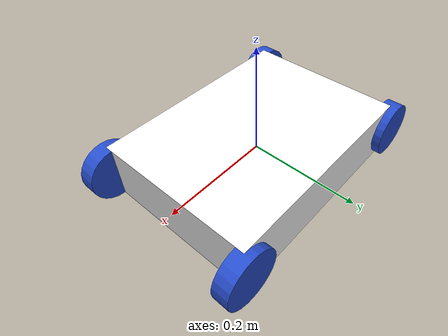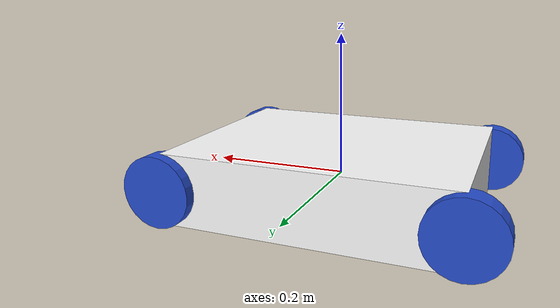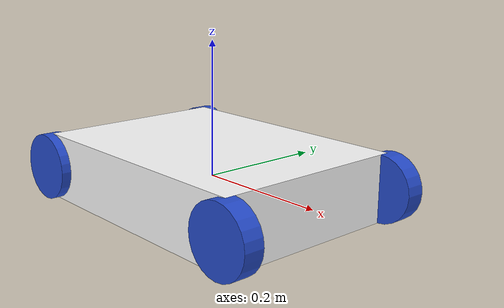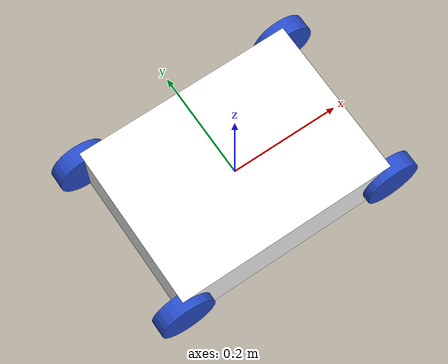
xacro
<?xml version="1.0"?>
<robot xmlns:xacro="http://www.ros.org/wiki/xacro">

<xacro:include filename="inertial_macros.xacro"/>

<material name="white">
    <color rgba="1 1 1 1" />
</material>

<material name="orange">
    <color rgba="1 0.3 0.1 1" />
</material>

<material name="blue">
    <color rgba="0.2 0.2 1 1" />
</material>

<material name="black">
    <color rgba="0 0 0 1" />
</material>

<material name="red">
    <color rgba="1 0 0 1" />
</material>

  <xacro:property name="wheel_radius" value="0.05"/>
  <xacro:property name="wheel_width" value="0.03"/>
  <xacro:property name="wheel_x_offset" value="0.20"/>
  <xacro:property name="wheel_y_offset" value="0.15"/>

<!-- BASE_FOOTPRINT LINK -->

<joint name="base_footprint_joint" type="fixed">
	<parent link="base_link"/>
	<child link="base_footprint"/>
	<origin xyz="0 0 0" rpy="0 0 0"/>

</joint>

<link name="base_footprint">

</link>

  <link name="base_link">

  </link>

  <joint name="chassis_joint" type="fixed">
    <parent link="base_link"/>
    <child link="chassis"/>
    <origin xyz="0 0 0"/>
  </joint>

  <link name="chassis">
    <visual>
      <origin xyz="0 0 0"/>
      <geometry>
        <box size="0.4 0.3 0.1"/>
      </geometry>
      <material name="white"/>
    </visual>
    <collision>
      <origin xyz="0 0 0"/>
      <geometry>
        <box size="0.4 0.3 0.1"/>
      </geometry>
    </collision>
    <xacro:inertial_box mass="0.5" x="0" y="0" z="0">
      <origin xyz="0 0 0" rpy="0 0 0"/>
    </xacro:inertial_box>
  </link>
  <gazebo reference="chassis">
    <material>Gazebo/White</material>
  </gazebo>

  <xacro:macro name="wheel" params="name x y">
    <link name="${name}_link">
      <visual>
        <geometry>
          <cylinder radius="${wheel_radius}" length="${wheel_width}"/>
        </geometry>
      </visual>
      <collision>
        <geometry>
            <sphere radius="${wheel_radius}"/>
        </geometry>
      </collision>
      <xacro:inertial_cylinder mass="0.5" length="${wheel_width}" radius="${wheel_radius}">
          <origin xyz="0 0 0" rpy="0 0 0"/>
      </xacro:inertial_cylinder>

    </link>
    <gazebo reference="${name}_link">
        <material>Gazebo/Blue</material>
    </gazebo>

    <joint name="${name}_joint" type="continuous">
      <parent link="base_link"/>
      <child link="${name}_link"/>
      <origin xyz="${x} ${y} 0" rpy="${pi/2} 0 0"/>

      <axis xyz="0 0 1"/>
    </joint>
  </xacro:macro>

  <xacro:wheel name="wheel_front_left"
               x="${wheel_x_offset}"
               y="${wheel_y_offset}"/>

  <xacro:wheel name="wheel_front_right"
               x="${wheel_x_offset}"
               y="-${wheel_y_offset}"/>

  <xacro:wheel name="wheel_rear_left"
               x="-${wheel_x_offset}"
               y="${wheel_y_offset}"/>

  <xacro:wheel name="wheel_rear_right"
               x="-${wheel_x_offset}"
               y="-${wheel_y_offset}"/>

</robot>
